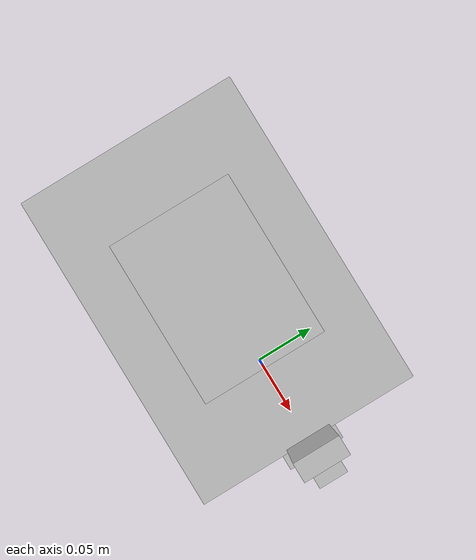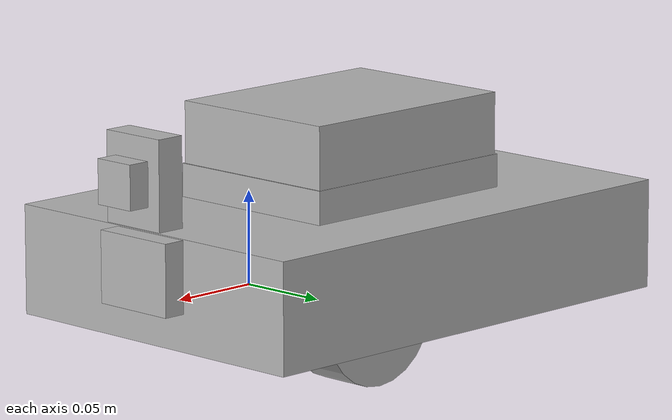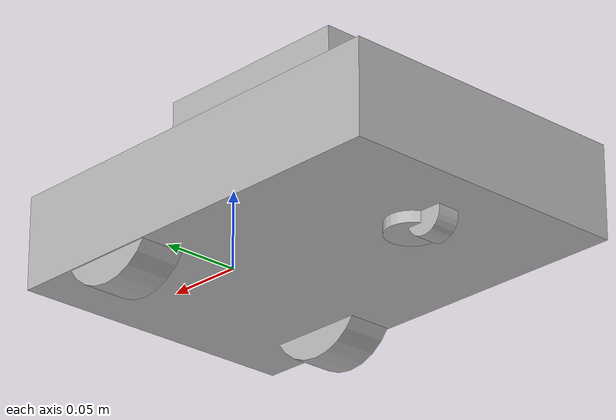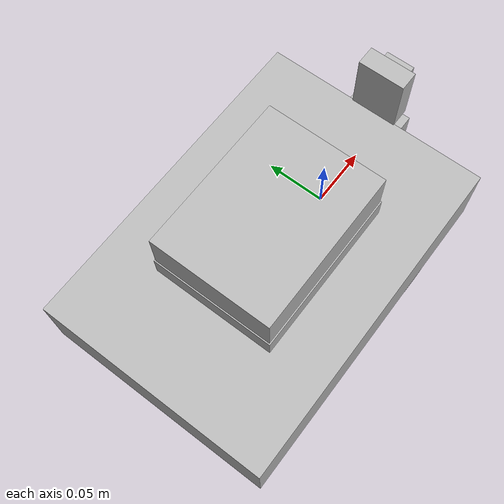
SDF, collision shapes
<sdf version='1.7'>
  <model name='alex'>
    <link name='base_link'>
      <inertial>
        <pose>-0.068 -0 0.034155 0 -0 0</pose>
        <mass>1.09</mass>
        <inertia>
          <ixx>0.00359659</ixx>
          <ixy>-6.81511e-19</ixy>
          <ixz>8.67362e-19</ixz>
          <iyy>0.0060024</iyy>
          <iyz>2.83444e-34</iyz>
          <izz>0.00712878</izz>
        </inertia>
      </inertial>
      <collision name='base_link_fixed_joint_lump__chassis_collision'>
        <pose>-0.068 0 0.0095 1.5708 0 -1.5708</pose>
        <geometry>
          <box>
            <size>0.192 0.059 0.276</size>
          </box>
        </geometry>
        <surface>
          <contact>
            <ode>
              <kp>10000</kp>
              <kd>10000</kd>
            </ode>
          </contact>
          <friction>
            <ode>
              <mu>1</mu>
              <mu2>1</mu2>
            </ode>
          </friction>
        </surface>
      </collision>
      <collision name='base_link_fixed_joint_lump__ep_collision_1'>
        <pose>-0.068 0 0.047975 1.5708 0 -1.5708</pose>
        <geometry>
          <box>
            <size>0.1015 0.018 0.134</size>
          </box>
        </geometry>
        <surface>
          <contact>
            <ode>
              <kp>10000</kp>
              <kd>10000</kd>
            </ode>
          </contact>
          <friction>
            <ode>
              <mu>1</mu>
              <mu2>1</mu2>
            </ode>
          </friction>
        </surface>
      </collision>
      <collision name='base_link_fixed_joint_lump__pt4_collision_2'>
        <pose>-0.068 0 0.073475 1.5708 0 -1.5708</pose>
        <geometry>
          <box>
            <size>0.0995 0.034 0.132</size>
          </box>
        </geometry>
        <surface>
          <contact>
            <ode>
              <kp>10000</kp>
              <kd>10000</kd>
            </ode>
          </contact>
          <friction>
            <ode>
              <mu>1</mu>
              <mu2>1</mu2>
            </ode>
          </friction>
        </surface>
      </collision>
      <visual name='base_link_fixed_joint_lump__chassis_visual'>
        <pose>-0.068 0 0.056475 1.5708 0 -1.5708</pose>
        <geometry>
          <mesh>
            <scale>1 1 1</scale>
            <uri>model://alex/meshes/chassis_asm.dae</uri>
          </mesh>
        </geometry>
      </visual>
      <visual name='base_link_fixed_joint_lump__ep_visual_1'>
        <pose>-0.068 0 0.056475 1.5708 0 -1.5708</pose>
        <geometry>
          <mesh>
            <scale>1 1 1</scale>
            <uri>model://alex/meshes/EP_asm.dae</uri>
          </mesh>
        </geometry>
      </visual>
      <visual name='base_link_fixed_joint_lump__pt4_visual_2'>
        <pose>-0.068 0 0.056475 1.5708 0 -1.5708</pose>
        <geometry>
          <mesh>
            <scale>1 1 1</scale>
            <uri>model://alex/meshes/4_asm_2.dae</uri>
          </mesh>
        </geometry>
      </visual>
      <velocity_decay/>
      <velocity_decay/>
      <gravity>1</gravity>
      <velocity_decay/>
    </link>
    <joint name='baselink_castor_joint' type='revolute'>
      <pose relative_to='base_link'>-0.148 0 -0.00204 0 -0 0</pose>
      <parent>base_link</parent>
      <child>castor</child>
      <axis>
        <xyz>0 0 1</xyz>
        <limit>
          <lower>-1e+16</lower>
          <upper>1e+16</upper>
        </limit>
        <dynamics>
          <spring_reference>0</spring_reference>
          <spring_stiffness>0</spring_stiffness>
        </dynamics>
      </axis>
    </joint>
    <link name='castor'>
      <pose relative_to='baselink_castor_joint'>0 0 0 0 -0 0</pose>
      <inertial>
        <pose>0 0 -0.0125 0 -0 0</pose>
        <mass>0.001</mass>
        <inertia>
          <ixx>1.17693e-07</ixx>
          <ixy>0</ixy>
          <ixz>0</ixz>
          <iyy>1.17693e-07</iyy>
          <iyz>0</iyz>
          <izz>1.3122e-07</izz>
        </inertia>
      </inertial>
      <collision name='castor_collision'>
        <pose>0 0 -0.0125 0 -0 0</pose>
        <geometry>
          <cylinder>
            <length>0.025</length>
            <radius>0.0162</radius>
          </cylinder>
        </geometry>
        <surface>
          <contact>
            <ode>
              <kp>10000</kp>
              <kd>10000</kd>
            </ode>
          </contact>
          <friction>
            <ode>
              <mu>10</mu>
              <mu2>10</mu2>
            </ode>
          </friction>
        </surface>
      </collision>
      <visual name='castor_visual'>
        <pose>0.08 0 0.058515 1.5708 0 -1.5708</pose>
        <geometry>
          <mesh>
            <scale>1 1 1</scale>
            <uri>model://alex/meshes/castor_asm_3.dae</uri>
          </mesh>
        </geometry>
      </visual>
      <gravity>1</gravity>
      <velocity_decay/>
    </link>
    <joint name='castor_castorwheel_joint' type='revolute'>
      <pose relative_to='castor'>-0.016 0 -0.0205 -1.5708 0 0</pose>
      <parent>castor</parent>
      <child>castor_wheel</child>
      <axis>
        <xyz>0 0 1</xyz>
        <limit>
          <lower>-1e+16</lower>
          <upper>1e+16</upper>
        </limit>
        <dynamics>
          <spring_reference>0</spring_reference>
          <spring_stiffness>0</spring_stiffness>
        </dynamics>
      </axis>
    </joint>
    <link name='castor_wheel'>
      <pose relative_to='castor_castorwheel_joint'>0 0 0 0 -0 0</pose>
      <inertial>
        <pose>0 0 0 0 -0 0</pose>
        <mass>0.001</mass>
        <inertia>
          <ixx>5.65833e-08</ixx>
          <ixy>0</ixy>
          <ixz>0</ixz>
          <iyy>5.65833e-08</iyy>
          <iyz>0</iyz>
          <izz>7.8125e-08</izz>
        </inertia>
      </inertial>
      <collision name='castor_wheel_collision'>
        <pose>0 0 0 0 -0 0</pose>
        <geometry>
          <cylinder>
            <length>0.0145</length>
            <radius>0.0125</radius>
          </cylinder>
        </geometry>
        <surface>
          <contact>
            <ode>
              <kp>1000</kp>
              <kd>1000</kd>
            </ode>
          </contact>
          <friction>
            <ode>
              <mu>10</mu>
              <mu2>10</mu2>
            </ode>
          </friction>
        </surface>
      </collision>
      <gravity>1</gravity>
      <velocity_decay/>
    </link>
    <joint name='pan_mechanism_joint' type='revolute'>
      <pose relative_to='base_link'>0.074268 0 0.019194 -1.5708 -0 -3.14159</pose>
      <parent>base_link</parent>
      <child>pan_mechanism</child>
      <axis>
        <xyz>0 1 0</xyz>
        <limit>
          <lower>-1.5708</lower>
          <upper>1.5708</upper>
          <effort>1</effort>
          <velocity>1.74533</velocity>
        </limit>
        <dynamics>
          <spring_reference>0</spring_reference>
          <spring_stiffness>0</spring_stiffness>
        </dynamics>
      </axis>
    </joint>
    <link name='pan_mechanism'>
      <pose relative_to='pan_mechanism_joint'>0 0 0 0 -0 0</pose>
      <inertial>
        <pose>0 0 0 0 -0 0</pose>
        <mass>0.005</mass>
        <inertia>
          <ixx>1.5776e-06</ixx>
          <ixy>0</ixy>
          <ixz>0</ixz>
          <iyy>1.06667e-06</iyy>
          <iyz>0</iyz>
          <izz>7.24271e-07</izz>
        </inertia>
      </inertial>
      <collision name='pan_mechanism_collision'>
        <pose>0 0 0 0 -0 0</pose>
        <geometry>
          <box>
            <size>0.016 0.0385 0.048</size>
          </box>
        </geometry>
        <surface>
          <contact>
            <ode>
              <kp>10000</kp>
              <kd>10000</kd>
            </ode>
          </contact>
          <friction>
            <ode>
              <mu>1</mu>
              <mu2>1</mu2>
            </ode>
          </friction>
        </surface>
      </collision>
      <visual name='pan_mechanism_visual'>
        <pose>0 0 0 0 -0 0</pose>
        <geometry>
          <mesh>
            <scale>1 1 1</scale>
            <uri>model://alex/meshes/pan_asm_2.dae</uri>
          </mesh>
        </geometry>
      </visual>
      <gravity>1</gravity>
      <velocity_decay/>
    </link>
    <joint name='tilt_mechanism_joint' type='revolute'>
      <pose relative_to='pan_mechanism'>0 -0.04825 -0.000526 1.5708 -0 3.14159</pose>
      <parent>pan_mechanism</parent>
      <child>tilt_mechanism</child>
      <axis>
        <xyz>0 1 0</xyz>
        <limit>
          <lower>-1.5708</lower>
          <upper>1.5708</upper>
          <effort>1</effort>
          <velocity>1.74533</velocity>
        </limit>
        <dynamics>
          <spring_reference>0</spring_reference>
          <spring_stiffness>0</spring_stiffness>
        </dynamics>
      </axis>
    </joint>
    <link name='tilt_mechanism'>
      <pose relative_to='tilt_mechanism_joint'>0 0 0 0 -0 0</pose>
      <inertial>
        <pose>0.00725 0.000175 0 0 -0 0</pose>
        <mass>0.01</mass>
        <inertia>
          <ixx>2.04796e-06</ixx>
          <ixy>-1.26875e-08</ixy>
          <ixz>0</ixz>
          <iyy>1.89138e-06</iyy>
          <iyz>0</iyz>
          <izz>1.54929e-06</izz>
        </inertia>
      </inertial>
      <collision name='tilt_mechanism_collision'>
        <pose>0 0 0 0 -0 0</pose>
        <geometry>
          <box>
            <size>0.016 0.0385 0.048</size>
          </box>
        </geometry>
        <surface>
          <contact>
            <ode>
              <kp>10000</kp>
              <kd>10000</kd>
            </ode>
          </contact>
          <friction>
            <ode>
              <mu>1</mu>
              <mu2>1</mu2>
            </ode>
          </friction>
        </surface>
      </collision>
      <collision name='tilt_mechanism_fixed_joint_lump__camera_module_collision_1'>
        <pose>0.0145 0.00035 0 0 0 -1.5708</pose>
        <geometry>
          <box>
            <size>0.02375 0.0124 0.02375</size>
          </box>
        </geometry>
      </collision>
      <visual name='tilt_mechanism_visual'>
        <pose>0 0 0 0 -0 0</pose>
        <geometry>
          <mesh>
            <scale>1 1 1</scale>
            <uri>model://alex/meshes/tilt_asm.dae</uri>
          </mesh>
        </geometry>
      </visual>
      <visual name='tilt_mechanism_fixed_joint_lump__camera_module_visual_1'>
        <pose>0.0176 0.00035 0 0 0 -1.5708</pose>
        <geometry>
          <mesh>
            <scale>1 1 1</scale>
            <uri>model://alex/meshes/camera_asm.dae</uri>
          </mesh>
        </geometry>
      </visual>
      <visual name='tilt_mechanism_fixed_joint_lump__camera_sensor_visual_2'>
        <pose>0.019 0.00035 0 3.14159 -0 0</pose>
        <geometry>
          <box>
            <size>0.001 0.001 0.001</size>
          </box>
        </geometry>
      </visual>
      <velocity_decay/>
      <gravity>1</gravity>
      <velocity_decay/>
      <sensor name='camera1' type='camera'>
        <update_rate>30</update_rate>
        <camera name='pan_tilt_camera'>
          <horizontal_fov>1.88496</horizontal_fov>
          <image>
            <width>640</width>
            <height>480</height>
            <format>R8G8B8</format>
          </image>
          <clip>
            <near>0.02</near>
            <far>300</far>
          </clip>
          <noise>
            <type>gaussian</type>
            <mean>0</mean>
            <stddev>0.007</stddev>
          </noise>
        </camera>
        <plugin name='camera_controller' filename='libgazebo_ros_camera.so'>
          <alwaysOn>1</alwaysOn>
          <updateRate>0.0</updateRate>
          <cameraName>alex/camera1</cameraName>
          <imageTopicName>image_raw</imageTopicName>
          <cameraInfoTopicName>camera_info</cameraInfoTopicName>
          <frameName>camera_sensor</frameName>
          <hackBaseline>0.07</hackBaseline>
          <distortionK1>0.0</distortionK1>
          <distortionK2>0.0</distortionK2>
          <distortionK3>0.0</distortionK3>
          <distortionT1>0.0</distortionT1>
          <distortionT2>0.0</distortionT2>
        </plugin>
        <pose>0.019 0.00035 0 3.14159 -0 0</pose>
      </sensor>
    </link>
    <joint name='baselink_left_wheel_joint' type='revolute'>
      <pose relative_to='base_link'>0 0.0805 0 -1.5708 0 0</pose>
      <parent>base_link</parent>
      <child>left_wheel</child>
      <axis>
        <xyz>0 0 1</xyz>
        <limit>
          <lower>-1e+16</lower>
          <upper>1e+16</upper>
        </limit>
        <dynamics>
          <spring_reference>0</spring_reference>
          <spring_stiffness>0</spring_stiffness>
        </dynamics>
      </axis>
    </joint>
    <link name='left_wheel'>
      <pose relative_to='baselink_left_wheel_joint'>0 0 0 0 -0 0</pose>
      <inertial>
        <pose>0 0 0 0 -0 0</pose>
        <mass>0.01</mass>
        <inertia>
          <ixx>4.21646e-06</ixx>
          <ixy>0</ixy>
          <ixz>0</ixz>
          <iyy>4.21646e-06</iyy>
          <iyz>0</iyz>
          <izz>0.000457031</izz>
        </inertia>
      </inertial>
      <collision name='left_wheel_collision'>
        <pose>0 0 0 0 -0 0</pose>
        <geometry>
          <cylinder>
            <length>0.029</length>
            <radius>0.0375</radius>
          </cylinder>
        </geometry>
        <surface>
          <contact>
            <ode>
              <kp>500</kp>
              <kd>500</kd>
            </ode>
          </contact>
          <friction>
            <ode>
              <mu>10</mu>
              <mu2>10</mu2>
            </ode>
          </friction>
        </surface>
      </collision>
      <visual name='left_wheel_visual'>
        <pose>0 0 0 3.14159 0 3.14159</pose>
        <geometry>
          <mesh>
            <scale>1 1 1</scale>
            <uri>model://alex/meshes/wheel_asm.dae</uri>
          </mesh>
        </geometry>
      </visual>
      <gravity>1</gravity>
      <velocity_decay/>
    </link>
    <joint name='baselink_right_wheel_joint' type='revolute'>
      <pose relative_to='base_link'>0 -0.0805 0 -1.5708 0 0</pose>
      <parent>base_link</parent>
      <child>right_wheel</child>
      <axis>
        <xyz>0 0 1</xyz>
        <limit>
          <lower>-1e+16</lower>
          <upper>1e+16</upper>
        </limit>
        <dynamics>
          <spring_reference>0</spring_reference>
          <spring_stiffness>0</spring_stiffness>
        </dynamics>
      </axis>
    </joint>
    <link name='right_wheel'>
      <pose relative_to='baselink_right_wheel_joint'>0 0 0 0 -0 0</pose>
      <inertial>
        <pose>0 0 0 0 -0 0</pose>
        <mass>0.01</mass>
        <inertia>
          <ixx>4.21646e-06</ixx>
          <ixy>0</ixy>
          <ixz>0</ixz>
          <iyy>4.21646e-06</iyy>
          <iyz>0</iyz>
          <izz>0.000457031</izz>
        </inertia>
      </inertial>
      <collision name='right_wheel_collision'>
        <pose>0 0 0 0 -0 0</pose>
        <geometry>
          <cylinder>
            <length>0.029</length>
            <radius>0.0375</radius>
          </cylinder>
        </geometry>
        <surface>
          <contact>
            <ode>
              <kp>500</kp>
              <kd>500</kd>
            </ode>
          </contact>
          <friction>
            <ode>
              <mu>10</mu>
              <mu2>10</mu2>
            </ode>
          </friction>
        </surface>
      </collision>
      <visual name='right_wheel_visual'>
        <pose>0 0 0 0 -0 0</pose>
        <geometry>
          <mesh>
            <scale>1 1 1</scale>
            <uri>model://alex/meshes/wheel_asm.dae</uri>
          </mesh>
        </geometry>
      </visual>
      <gravity>1</gravity>
      <velocity_decay/>
    </link>
    <static>0</static>
    <plugin name='differential_drive_controller' filename='libgazebo_ros_diff_drive.so'>
      <legacyMode>0</legacyMode>
      <alwaysOn>1</alwaysOn>
      <updateRate>20</updateRate>
      <leftJoint>baselink_left_wheel_joint</leftJoint>
      <rightJoint>baselink_right_wheel_joint</rightJoint>
      <wheelSeparation>0.175</wheelSeparation>
      <wheelDiameter>0.075</wheelDiameter>
      <torque>0.01</torque>
      <commandTopic>cmd_vel</commandTopic>
      <odometryTopic>odom</odometryTopic>
      <odometryFrame>odom</odometryFrame>
      <robotBaseFrame>base_link</robotBaseFrame>
    </plugin>
    <plugin name='gazebo_ros_control' filename='libgazebo_ros_control.so'>
      <robotNamespace>/alex</robotNamespace>
    </plugin>
  </model>
</sdf>
